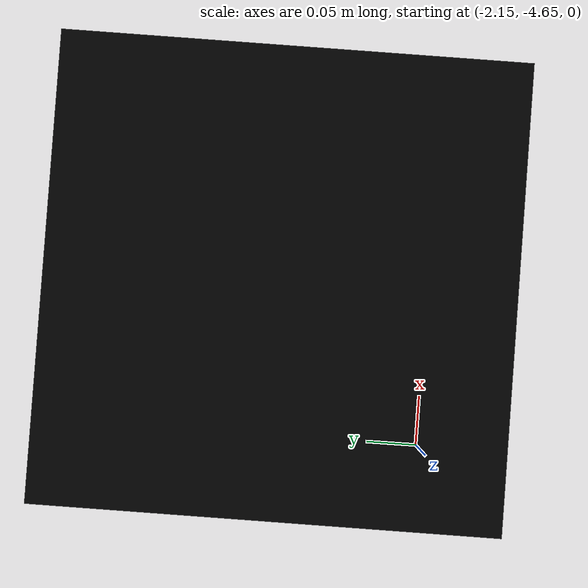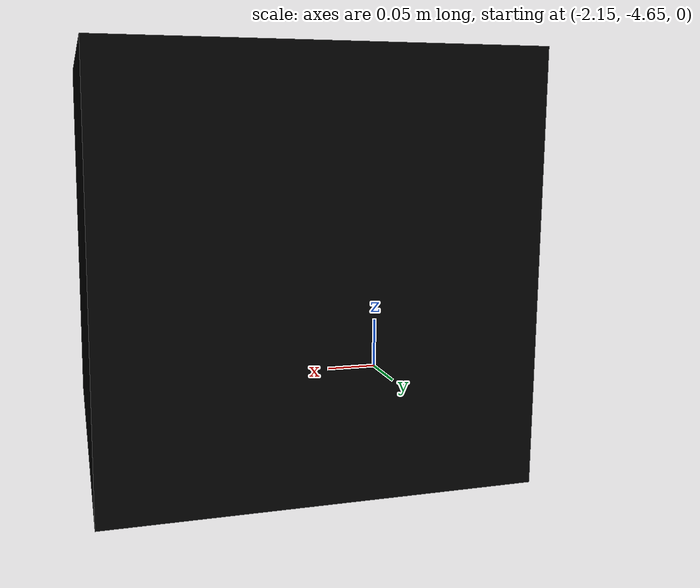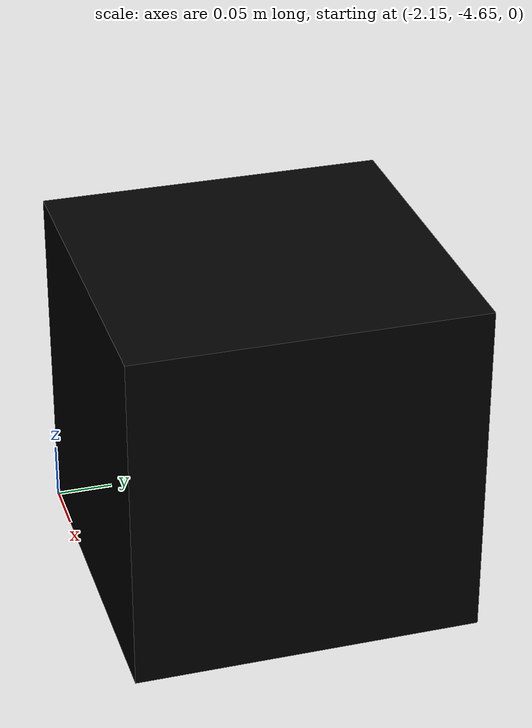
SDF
<?xml version='1.0'?>
<sdf version='1.4'>
  <model name="AruCo_Block_9">
    <static>true</static>
    <link name='chassis'>
            <pose>-2 -4.5 0.15 0 0 0</pose>

            <collision name='collision'>
              <geometry>
                <box>
                  <size>.3 .3 .3</size>
                </box>
              </geometry>
            </collision>

            <visual name='visual_9'>
              <geometry>
                <box>
                  <size>.3 .3 .3</size>
                </box>
              </geometry>
              <material>
                <script>
                <uri>model://AruCo_Block_9/materials/scripts</uri>
                <uri>model://AruCo_Block_9/materials/textures</uri>
                <name>block9</name>
                </script>
                <ambient>0 0 0 1</ambient>
                <diffuse>0 0 0 1</diffuse>
                <specular>0 0 0 0</specular>
                <emissive>1 1 1 1</emissive>
              </material>
            </visual>
          </link>
  </model>
</sdf>
